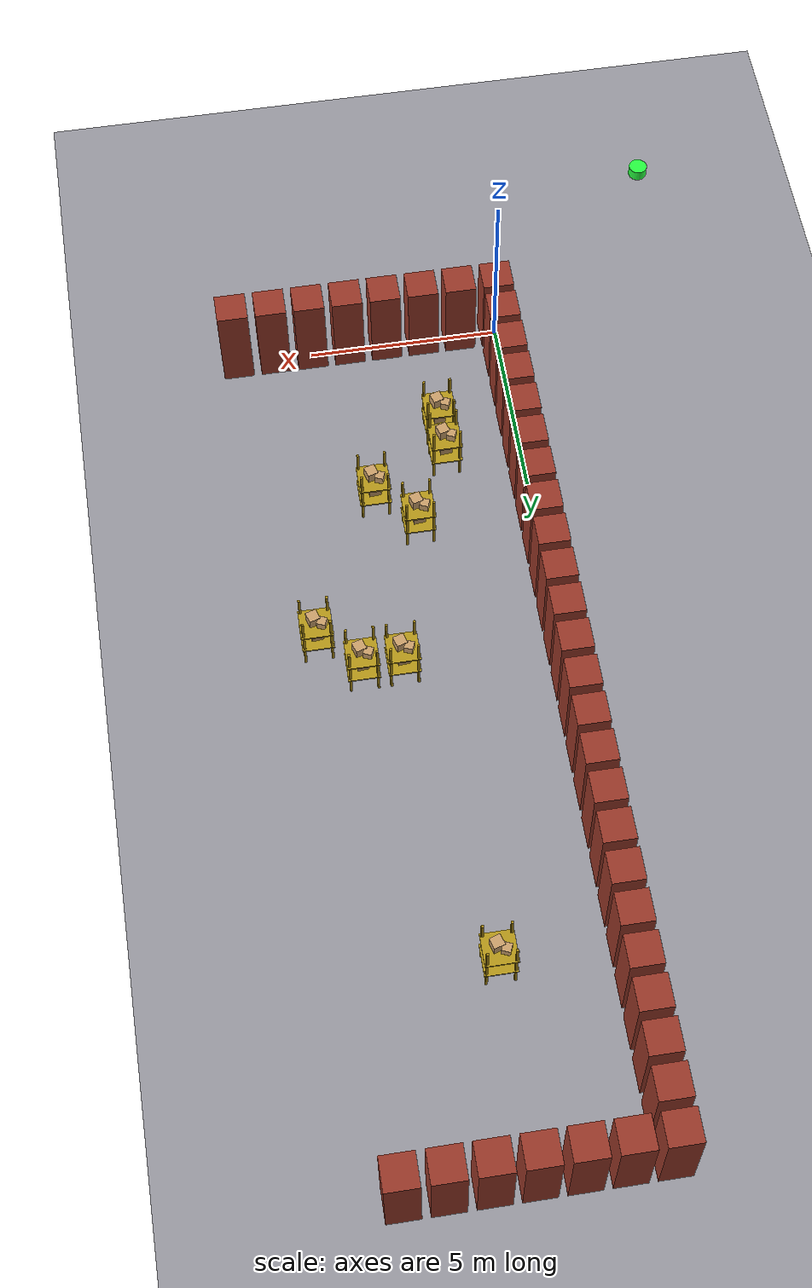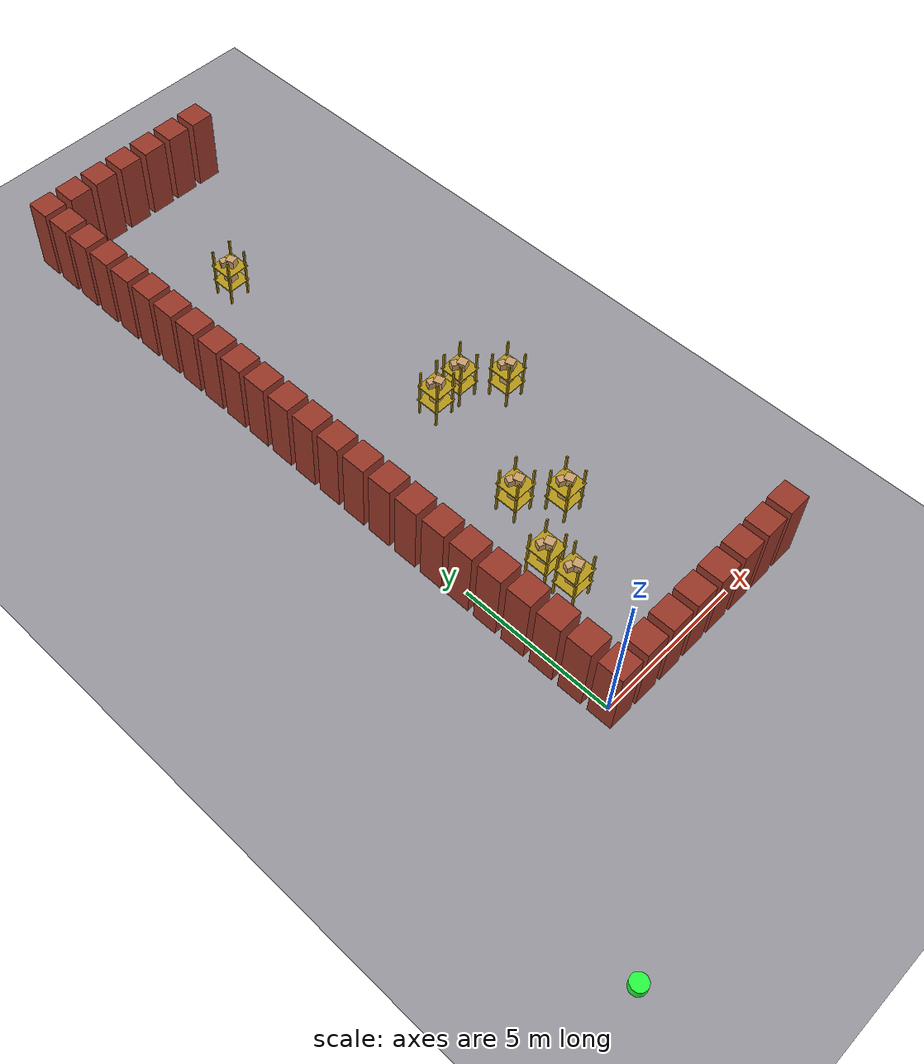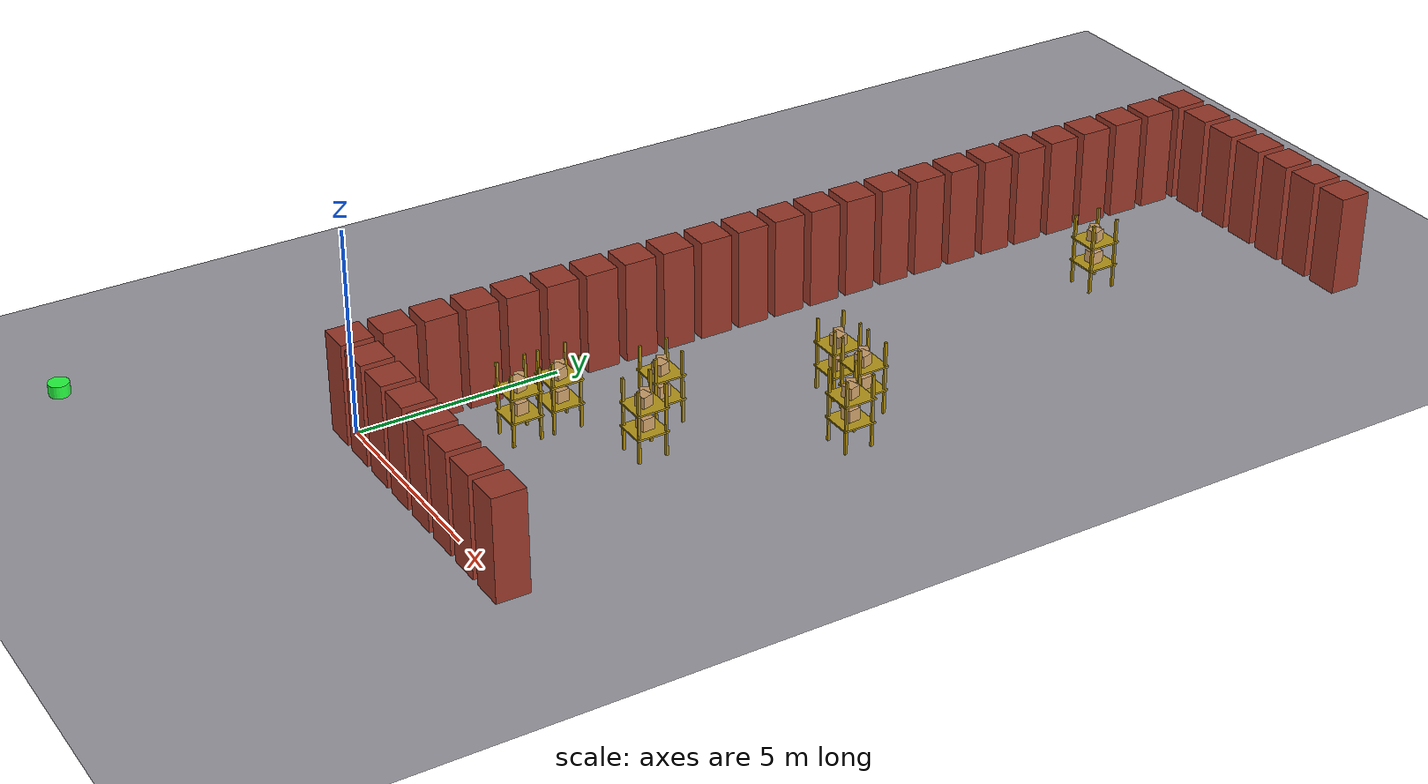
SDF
<sdf version="1.9">
 <world name="agv_nav">
  <model name="goal_marker">
   <static>false</static>
   <pose>-5 -5 0.15 0 0 0</pose>
   <link name="link">
    <gravity>false</gravity>
    <visual name="visual">
     <geometry><cylinder><radius>0.25</radius><length>0.3</length></cylinder></geometry>
     <material>
      <ambient>0.1 0.9 0.2 1</ambient>
      <diffuse>0.15 1.0 0.25 1</diffuse>
      <emissive>0.05 0.5 0.05 1</emissive>
     </material>
    </visual>
   </link>
  </model>
  <model name="ground_plane">
   <static>true</static>
   <link name="link">
    <collision name="collision">
     <geometry><plane><normal>0 0 1</normal><size>100 100</size></plane></geometry>
    </collision>
    <visual name="visual">
     <geometry><plane><normal>0 0 1</normal><size>100 100</size></plane></geometry>
     <material>
      <ambient>0.55 0.55 0.58 1</ambient>
      <diffuse>0.6 0.6 0.63 1</diffuse>
      <specular>0.2 0.2 0.2 1</specular>
     </material>
    </visual>
   </link>
  </model>
  <model name="wall_0">
   <static>true</static>
   <pose>0 0 1.25 0 0 0</pose>
   <link name="link">
    <collision name="collision"><geometry><box><size>0.8 0.8 2.5</size></box></geometry></collision>
    <visual name="visual">
     <geometry><box><size>0.8 0.8 2.5</size></box></geometry>
     <material>
      <ambient>0.5 0.18 0.14 1</ambient>
      <diffuse>0.6 0.22 0.16 1</diffuse>
      <specular>0.1 0.1 0.1 1</specular>
     </material>
    </visual>
   </link>
  </model>
  <model name="wall_1">
   <static>true</static>
   <pose>1 0 1.25 0 0 0</pose>
   <link name="link">
    <collision name="collision"><geometry><box><size>0.8 0.8 2.5</size></box></geometry></collision>
    <visual name="visual">
     <geometry><box><size>0.8 0.8 2.5</size></box></geometry>
     <material>
      <ambient>0.5 0.18 0.14 1</ambient>
      <diffuse>0.6 0.22 0.16 1</diffuse>
      <specular>0.1 0.1 0.1 1</specular>
     </material>
    </visual>
   </link>
  </model>
  <model name="wall_2">
   <static>true</static>
   <pose>2 0 1.25 0 0 0</pose>
   <link name="link">
    <collision name="collision"><geometry><box><size>0.8 0.8 2.5</size></box></geometry></collision>
    <visual name="visual">
     <geometry><box><size>0.8 0.8 2.5</size></box></geometry>
     <material>
      <ambient>0.5 0.18 0.14 1</ambient>
      <diffuse>0.6 0.22 0.16 1</diffuse>
      <specular>0.1 0.1 0.1 1</specular>
     </material>
    </visual>
   </link>
  </model>
  <model name="wall_3">
   <static>true</static>
   <pose>3 0 1.25 0 0 0</pose>
   <link name="link">
    <collision name="collision"><geometry><box><size>0.8 0.8 2.5</size></box></geometry></collision>
    <visual name="visual">
     <geometry><box><size>0.8 0.8 2.5</size></box></geometry>
     <material>
      <ambient>0.5 0.18 0.14 1</ambient>
      <diffuse>0.6 0.22 0.16 1</diffuse>
      <specular>0.1 0.1 0.1 1</specular>
     </material>
    </visual>
   </link>
  </model>
  <model name="wall_4">
   <static>true</static>
   <pose>4 0 1.25 0 0 0</pose>
   <link name="link">
    <collision name="collision"><geometry><box><size>0.8 0.8 2.5</size></box></geometry></collision>
    <visual name="visual">
     <geometry><box><size>0.8 0.8 2.5</size></box></geometry>
     <material>
      <ambient>0.5 0.18 0.14 1</ambient>
      <diffuse>0.6 0.22 0.16 1</diffuse>
      <specular>0.1 0.1 0.1 1</specular>
     </material>
    </visual>
   </link>
  </model>
  <model name="wall_5">
   <static>true</static>
   <pose>5 0 1.25 0 0 0</pose>
   <link name="link">
    <collision name="collision"><geometry><box><size>0.8 0.8 2.5</size></box></geometry></collision>
    <visual name="visual">
     <geometry><box><size>0.8 0.8 2.5</size></box></geometry>
     <material>
      <ambient>0.5 0.18 0.14 1</ambient>
      <diffuse>0.6 0.22 0.16 1</diffuse>
      <specular>0.1 0.1 0.1 1</specular>
     </material>
    </visual>
   </link>
  </model>
  <model name="wall_6">
   <static>true</static>
   <pose>6 0 1.25 0 0 0</pose>
   <link name="link">
    <collision name="collision"><geometry><box><size>0.8 0.8 2.5</size></box></geometry></collision>
    <visual name="visual">
     <geometry><box><size>0.8 0.8 2.5</size></box></geometry>
     <material>
      <ambient>0.5 0.18 0.14 1</ambient>
      <diffuse>0.6 0.22 0.16 1</diffuse>
      <specular>0.1 0.1 0.1 1</specular>
     </material>
    </visual>
   </link>
  </model>
  <model name="wall_7">
   <static>true</static>
   <pose>7 0 1.25 0 0 0</pose>
   <link name="link">
    <collision name="collision"><geometry><box><size>0.8 0.8 2.5</size></box></geometry></collision>
    <visual name="visual">
     <geometry><box><size>0.8 0.8 2.5</size></box></geometry>
     <material>
      <ambient>0.5 0.18 0.14 1</ambient>
      <diffuse>0.6 0.22 0.16 1</diffuse>
      <specular>0.1 0.1 0.1 1</specular>
     </material>
    </visual>
   </link>
  </model>
  <model name="wall_24">
   <static>true</static>
   <pose>0 1 1.25 0 0 0</pose>
   <link name="link">
    <collision name="collision"><geometry><box><size>0.8 0.8 2.5</size></box></geometry></collision>
    <visual name="visual">
     <geometry><box><size>0.8 0.8 2.5</size></box></geometry>
     <material>
      <ambient>0.5 0.18 0.14 1</ambient>
      <diffuse>0.6 0.22 0.16 1</diffuse>
      <specular>0.1 0.1 0.1 1</specular>
     </material>
    </visual>
   </link>
  </model>
  <model name="wall_26">
   <static>true</static>
   <pose>0 2 1.25 0 0 0</pose>
   <link name="link">
    <collision name="collision"><geometry><box><size>0.8 0.8 2.5</size></box></geometry></collision>
    <visual name="visual">
     <geometry><box><size>0.8 0.8 2.5</size></box></geometry>
     <material>
      <ambient>0.5 0.18 0.14 1</ambient>
      <diffuse>0.6 0.22 0.16 1</diffuse>
      <specular>0.1 0.1 0.1 1</specular>
     </material>
    </visual>
   </link>
  </model>
  <model name="wall_28">
   <static>true</static>
   <pose>0 3 1.25 0 0 0</pose>
   <link name="link">
    <collision name="collision"><geometry><box><size>0.8 0.8 2.5</size></box></geometry></collision>
    <visual name="visual">
     <geometry><box><size>0.8 0.8 2.5</size></box></geometry>
     <material>
      <ambient>0.5 0.18 0.14 1</ambient>
      <diffuse>0.6 0.22 0.16 1</diffuse>
      <specular>0.1 0.1 0.1 1</specular>
     </material>
    </visual>
   </link>
  </model>
  <model name="obs_0">
   <static>true</static>
   <pose>2 3 0.9 0 0 0</pose>
   <link name="link">
    <collision name="collision"><geometry><box><size>0.8 0.8 1.8</size></box></geometry></collision>
    <visual name="post_0">
     <pose>0.34 0.34 0 0 0 0</pose>
     <geometry><box><size>0.06 0.06 1.8</size></box></geometry>
     <material><ambient>0.55 0.45 0.05 1</ambient><diffuse>0.65 0.52 0.06 1</diffuse></material>
    </visual>
    <visual name="post_1">
     <pose>-0.34 0.34 0 0 0 0</pose>
     <geometry><box><size>0.06 0.06 1.8</size></box></geometry>
     <material><ambient>0.55 0.45 0.05 1</ambient><diffuse>0.65 0.52 0.06 1</diffuse></material>
    </visual>
    <visual name="post_2">
     <pose>0.34 -0.34 0 0 0 0</pose>
     <geometry><box><size>0.06 0.06 1.8</size></box></geometry>
     <material><ambient>0.55 0.45 0.05 1</ambient><diffuse>0.65 0.52 0.06 1</diffuse></material>
    </visual>
    <visual name="post_3">
     <pose>-0.34 -0.34 0 0 0 0</pose>
     <geometry><box><size>0.06 0.06 1.8</size></box></geometry>
     <material><ambient>0.55 0.45 0.05 1</ambient><diffuse>0.65 0.52 0.06 1</diffuse></material>
    </visual>
    <visual name="plank_0">
     <pose>0 0 -0.3 0 0 0</pose>
     <geometry><box><size>0.8 0.8 0.04</size></box></geometry>
     <material><ambient>0.6 0.5 0.08 1</ambient><diffuse>0.72 0.6 0.1 1</diffuse></material>
    </visual>
    <visual name="plank_1">
     <pose>0 0 0.3 0 0 0</pose>
     <geometry><box><size>0.8 0.8 0.04</size></box></geometry>
     <material><ambient>0.6 0.5 0.08 1</ambient><diffuse>0.72 0.6 0.1 1</diffuse></material>
    </visual>
    <visual name="cbox_0">
     <pose>0.05 -0.05 0.47 0 0 0.3</pose>
     <geometry><box><size>0.28 0.28 0.28</size></box></geometry>
     <material><ambient>0.72 0.56 0.38 1</ambient><diffuse>0.8 0.63 0.42 1</diffuse></material>
    </visual>
    <visual name="cbox_1">
     <pose>-0.15 0.1 0.47 0 0 -0.4</pose>
     <geometry><box><size>0.22 0.22 0.22</size></box></geometry>
     <material><ambient>0.72 0.56 0.38 1</ambient><diffuse>0.8 0.63 0.42 1</diffuse></material>
    </visual>
    <visual name="cbox_2">
     <pose>0.0 0.0 -0.13 0 0 0.1</pose>
     <geometry><box><size>0.3 0.3 0.3</size></box></geometry>
     <material><ambient>0.72 0.56 0.38 1</ambient><diffuse>0.8 0.63 0.42 1</diffuse></material>
    </visual>
   </link>
  </model>
  <model name="wall_30">
   <static>true</static>
   <pose>0 4 1.25 0 0 0</pose>
   <link name="link">
    <collision name="collision"><geometry><box><size>0.8 0.8 2.5</size></box></geometry></collision>
    <visual name="visual">
     <geometry><box><size>0.8 0.8 2.5</size></box></geometry>
     <material>
      <ambient>0.5 0.18 0.14 1</ambient>
      <diffuse>0.6 0.22 0.16 1</diffuse>
      <specular>0.1 0.1 0.1 1</specular>
     </material>
    </visual>
   </link>
  </model>
  <model name="obs_4">
   <static>true</static>
   <pose>2 4 0.9 0 0 0</pose>
   <link name="link">
    <collision name="collision"><geometry><box><size>0.8 0.8 1.8</size></box></geometry></collision>
    <visual name="post_0">
     <pose>0.34 0.34 0 0 0 0</pose>
     <geometry><box><size>0.06 0.06 1.8</size></box></geometry>
     <material><ambient>0.55 0.45 0.05 1</ambient><diffuse>0.65 0.52 0.06 1</diffuse></material>
    </visual>
    <visual name="post_1">
     <pose>-0.34 0.34 0 0 0 0</pose>
     <geometry><box><size>0.06 0.06 1.8</size></box></geometry>
     <material><ambient>0.55 0.45 0.05 1</ambient><diffuse>0.65 0.52 0.06 1</diffuse></material>
    </visual>
    <visual name="post_2">
     <pose>0.34 -0.34 0 0 0 0</pose>
     <geometry><box><size>0.06 0.06 1.8</size></box></geometry>
     <material><ambient>0.55 0.45 0.05 1</ambient><diffuse>0.65 0.52 0.06 1</diffuse></material>
    </visual>
    <visual name="post_3">
     <pose>-0.34 -0.34 0 0 0 0</pose>
     <geometry><box><size>0.06 0.06 1.8</size></box></geometry>
     <material><ambient>0.55 0.45 0.05 1</ambient><diffuse>0.65 0.52 0.06 1</diffuse></material>
    </visual>
    <visual name="plank_0">
     <pose>0 0 -0.3 0 0 0</pose>
     <geometry><box><size>0.8 0.8 0.04</size></box></geometry>
     <material><ambient>0.6 0.5 0.08 1</ambient><diffuse>0.72 0.6 0.1 1</diffuse></material>
    </visual>
    <visual name="plank_1">
     <pose>0 0 0.3 0 0 0</pose>
     <geometry><box><size>0.8 0.8 0.04</size></box></geometry>
     <material><ambient>0.6 0.5 0.08 1</ambient><diffuse>0.72 0.6 0.1 1</diffuse></material>
    </visual>
    <visual name="cbox_0">
     <pose>0.05 -0.05 0.47 0 0 0.3</pose>
     <geometry><box><size>0.28 0.28 0.28</size></box></geometry>
     <material><ambient>0.72 0.56 0.38 1</ambient><diffuse>0.8 0.63 0.42 1</diffuse></material>
    </visual>
    <visual name="cbox_1">
     <pose>-0.15 0.1 0.47 0 0 -0.4</pose>
     <geometry><box><size>0.22 0.22 0.22</size></box></geometry>
     <material><ambient>0.72 0.56 0.38 1</ambient><diffuse>0.8 0.63 0.42 1</diffuse></material>
    </visual>
    <visual name="cbox_2">
     <pose>0.0 0.0 -0.13 0 0 0.1</pose>
     <geometry><box><size>0.3 0.3 0.3</size></box></geometry>
     <material><ambient>0.72 0.56 0.38 1</ambient><diffuse>0.8 0.63 0.42 1</diffuse></material>
    </visual>
   </link>
  </model>
  <model name="wall_32">
   <static>true</static>
   <pose>0 5 1.25 0 0 0</pose>
   <link name="link">
    <collision name="collision"><geometry><box><size>0.8 0.8 2.5</size></box></geometry></collision>
    <visual name="visual">
     <geometry><box><size>0.8 0.8 2.5</size></box></geometry>
     <material>
      <ambient>0.5 0.18 0.14 1</ambient>
      <diffuse>0.6 0.22 0.16 1</diffuse>
      <specular>0.1 0.1 0.1 1</specular>
     </material>
    </visual>
   </link>
  </model>
  <model name="obs_6">
   <static>true</static>
   <pose>4 5 0.9 0 0 0</pose>
   <link name="link">
    <collision name="collision"><geometry><box><size>0.8 0.8 1.8</size></box></geometry></collision>
    <visual name="post_0">
     <pose>0.34 0.34 0 0 0 0</pose>
     <geometry><box><size>0.06 0.06 1.8</size></box></geometry>
     <material><ambient>0.55 0.45 0.05 1</ambient><diffuse>0.65 0.52 0.06 1</diffuse></material>
    </visual>
    <visual name="post_1">
     <pose>-0.34 0.34 0 0 0 0</pose>
     <geometry><box><size>0.06 0.06 1.8</size></box></geometry>
     <material><ambient>0.55 0.45 0.05 1</ambient><diffuse>0.65 0.52 0.06 1</diffuse></material>
    </visual>
    <visual name="post_2">
     <pose>0.34 -0.34 0 0 0 0</pose>
     <geometry><box><size>0.06 0.06 1.8</size></box></geometry>
     <material><ambient>0.55 0.45 0.05 1</ambient><diffuse>0.65 0.52 0.06 1</diffuse></material>
    </visual>
    <visual name="post_3">
     <pose>-0.34 -0.34 0 0 0 0</pose>
     <geometry><box><size>0.06 0.06 1.8</size></box></geometry>
     <material><ambient>0.55 0.45 0.05 1</ambient><diffuse>0.65 0.52 0.06 1</diffuse></material>
    </visual>
    <visual name="plank_0">
     <pose>0 0 -0.3 0 0 0</pose>
     <geometry><box><size>0.8 0.8 0.04</size></box></geometry>
     <material><ambient>0.6 0.5 0.08 1</ambient><diffuse>0.72 0.6 0.1 1</diffuse></material>
    </visual>
    <visual name="plank_1">
     <pose>0 0 0.3 0 0 0</pose>
     <geometry><box><size>0.8 0.8 0.04</size></box></geometry>
     <material><ambient>0.6 0.5 0.08 1</ambient><diffuse>0.72 0.6 0.1 1</diffuse></material>
    </visual>
    <visual name="cbox_0">
     <pose>0.05 -0.05 0.47 0 0 0.3</pose>
     <geometry><box><size>0.28 0.28 0.28</size></box></geometry>
     <material><ambient>0.72 0.56 0.38 1</ambient><diffuse>0.8 0.63 0.42 1</diffuse></material>
    </visual>
    <visual name="cbox_1">
     <pose>-0.15 0.1 0.47 0 0 -0.4</pose>
     <geometry><box><size>0.22 0.22 0.22</size></box></geometry>
     <material><ambient>0.72 0.56 0.38 1</ambient><diffuse>0.8 0.63 0.42 1</diffuse></material>
    </visual>
    <visual name="cbox_2">
     <pose>0.0 0.0 -0.13 0 0 0.1</pose>
     <geometry><box><size>0.3 0.3 0.3</size></box></geometry>
     <material><ambient>0.72 0.56 0.38 1</ambient><diffuse>0.8 0.63 0.42 1</diffuse></material>
    </visual>
   </link>
  </model>
  <model name="wall_34">
   <static>true</static>
   <pose>0 6 1.25 0 0 0</pose>
   <link name="link">
    <collision name="collision"><geometry><box><size>0.8 0.8 2.5</size></box></geometry></collision>
    <visual name="visual">
     <geometry><box><size>0.8 0.8 2.5</size></box></geometry>
     <material>
      <ambient>0.5 0.18 0.14 1</ambient>
      <diffuse>0.6 0.22 0.16 1</diffuse>
      <specular>0.1 0.1 0.1 1</specular>
     </material>
    </visual>
   </link>
  </model>
  <model name="obs_8">
   <static>true</static>
   <pose>3 6 0.9 0 0 0</pose>
   <link name="link">
    <collision name="collision"><geometry><box><size>0.8 0.8 1.8</size></box></geometry></collision>
    <visual name="post_0">
     <pose>0.34 0.34 0 0 0 0</pose>
     <geometry><box><size>0.06 0.06 1.8</size></box></geometry>
     <material><ambient>0.55 0.45 0.05 1</ambient><diffuse>0.65 0.52 0.06 1</diffuse></material>
    </visual>
    <visual name="post_1">
     <pose>-0.34 0.34 0 0 0 0</pose>
     <geometry><box><size>0.06 0.06 1.8</size></box></geometry>
     <material><ambient>0.55 0.45 0.05 1</ambient><diffuse>0.65 0.52 0.06 1</diffuse></material>
    </visual>
    <visual name="post_2">
     <pose>0.34 -0.34 0 0 0 0</pose>
     <geometry><box><size>0.06 0.06 1.8</size></box></geometry>
     <material><ambient>0.55 0.45 0.05 1</ambient><diffuse>0.65 0.52 0.06 1</diffuse></material>
    </visual>
    <visual name="post_3">
     <pose>-0.34 -0.34 0 0 0 0</pose>
     <geometry><box><size>0.06 0.06 1.8</size></box></geometry>
     <material><ambient>0.55 0.45 0.05 1</ambient><diffuse>0.65 0.52 0.06 1</diffuse></material>
    </visual>
    <visual name="plank_0">
     <pose>0 0 -0.3 0 0 0</pose>
     <geometry><box><size>0.8 0.8 0.04</size></box></geometry>
     <material><ambient>0.6 0.5 0.08 1</ambient><diffuse>0.72 0.6 0.1 1</diffuse></material>
    </visual>
    <visual name="plank_1">
     <pose>0 0 0.3 0 0 0</pose>
     <geometry><box><size>0.8 0.8 0.04</size></box></geometry>
     <material><ambient>0.6 0.5 0.08 1</ambient><diffuse>0.72 0.6 0.1 1</diffuse></material>
    </visual>
    <visual name="cbox_0">
     <pose>0.05 -0.05 0.47 0 0 0.3</pose>
     <geometry><box><size>0.28 0.28 0.28</size></box></geometry>
     <material><ambient>0.72 0.56 0.38 1</ambient><diffuse>0.8 0.63 0.42 1</diffuse></material>
    </visual>
    <visual name="cbox_1">
     <pose>-0.15 0.1 0.47 0 0 -0.4</pose>
     <geometry><box><size>0.22 0.22 0.22</size></box></geometry>
     <material><ambient>0.72 0.56 0.38 1</ambient><diffuse>0.8 0.63 0.42 1</diffuse></material>
    </visual>
    <visual name="cbox_2">
     <pose>0.0 0.0 -0.13 0 0 0.1</pose>
     <geometry><box><size>0.3 0.3 0.3</size></box></geometry>
     <material><ambient>0.72 0.56 0.38 1</ambient><diffuse>0.8 0.63 0.42 1</diffuse></material>
    </visual>
   </link>
  </model>
  <model name="wall_36">
   <static>true</static>
   <pose>0 7 1.25 0 0 0</pose>
   <link name="link">
    <collision name="collision"><geometry><box><size>0.8 0.8 2.5</size></box></geometry></collision>
    <visual name="visual">
     <geometry><box><size>0.8 0.8 2.5</size></box></geometry>
     <material>
      <ambient>0.5 0.18 0.14 1</ambient>
      <diffuse>0.6 0.22 0.16 1</diffuse>
      <specular>0.1 0.1 0.1 1</specular>
     </material>
    </visual>
   </link>
  </model>
  <model name="wall_38">
   <static>true</static>
   <pose>0 8 1.25 0 0 0</pose>
   <link name="link">
    <collision name="collision"><geometry><box><size>0.8 0.8 2.5</size></box></geometry></collision>
    <visual name="visual">
     <geometry><box><size>0.8 0.8 2.5</size></box></geometry>
     <material>
      <ambient>0.5 0.18 0.14 1</ambient>
      <diffuse>0.6 0.22 0.16 1</diffuse>
      <specular>0.1 0.1 0.1 1</specular>
     </material>
    </visual>
   </link>
  </model>
  <model name="wall_40">
   <static>true</static>
   <pose>0 9 1.25 0 0 0</pose>
   <link name="link">
    <collision name="collision"><geometry><box><size>0.8 0.8 2.5</size></box></geometry></collision>
    <visual name="visual">
     <geometry><box><size>0.8 0.8 2.5</size></box></geometry>
     <material>
      <ambient>0.5 0.18 0.14 1</ambient>
      <diffuse>0.6 0.22 0.16 1</diffuse>
      <specular>0.1 0.1 0.1 1</specular>
     </material>
    </visual>
   </link>
  </model>
  <model name="obs_10">
   <static>true</static>
   <pose>6 9 0.9 0 0 0</pose>
   <link name="link">
    <collision name="collision"><geometry><box><size>0.8 0.8 1.8</size></box></geometry></collision>
    <visual name="post_0">
     <pose>0.34 0.34 0 0 0 0</pose>
     <geometry><box><size>0.06 0.06 1.8</size></box></geometry>
     <material><ambient>0.55 0.45 0.05 1</ambient><diffuse>0.65 0.52 0.06 1</diffuse></material>
    </visual>
    <visual name="post_1">
     <pose>-0.34 0.34 0 0 0 0</pose>
     <geometry><box><size>0.06 0.06 1.8</size></box></geometry>
     <material><ambient>0.55 0.45 0.05 1</ambient><diffuse>0.65 0.52 0.06 1</diffuse></material>
    </visual>
    <visual name="post_2">
     <pose>0.34 -0.34 0 0 0 0</pose>
     <geometry><box><size>0.06 0.06 1.8</size></box></geometry>
     <material><ambient>0.55 0.45 0.05 1</ambient><diffuse>0.65 0.52 0.06 1</diffuse></material>
    </visual>
    <visual name="post_3">
     <pose>-0.34 -0.34 0 0 0 0</pose>
     <geometry><box><size>0.06 0.06 1.8</size></box></geometry>
     <material><ambient>0.55 0.45 0.05 1</ambient><diffuse>0.65 0.52 0.06 1</diffuse></material>
    </visual>
    <visual name="plank_0">
     <pose>0 0 -0.3 0 0 0</pose>
     <geometry><box><size>0.8 0.8 0.04</size></box></geometry>
     <material><ambient>0.6 0.5 0.08 1</ambient><diffuse>0.72 0.6 0.1 1</diffuse></material>
    </visual>
    <visual name="plank_1">
     <pose>0 0 0.3 0 0 0</pose>
     <geometry><box><size>0.8 0.8 0.04</size></box></geometry>
     <material><ambient>0.6 0.5 0.08 1</ambient><diffuse>0.72 0.6 0.1 1</diffuse></material>
    </visual>
    <visual name="cbox_0">
     <pose>0.05 -0.05 0.47 0 0 0.3</pose>
     <geometry><box><size>0.28 0.28 0.28</size></box></geometry>
     <material><ambient>0.72 0.56 0.38 1</ambient><diffuse>0.8 0.63 0.42 1</diffuse></material>
    </visual>
    <visual name="cbox_1">
     <pose>-0.15 0.1 0.47 0 0 -0.4</pose>
     <geometry><box><size>0.22 0.22 0.22</size></box></geometry>
     <material><ambient>0.72 0.56 0.38 1</ambient><diffuse>0.8 0.63 0.42 1</diffuse></material>
    </visual>
    <visual name="cbox_2">
     <pose>0.0 0.0 -0.13 0 0 0.1</pose>
     <geometry><box><size>0.3 0.3 0.3</size></box></geometry>
     <material><ambient>0.72 0.56 0.38 1</ambient><diffuse>0.8 0.63 0.42 1</diffuse></material>
    </visual>
   </link>
  </model>
  <model name="wall_42">
   <static>true</static>
   <pose>0 10 1.25 0 0 0</pose>
   <link name="link">
    <collision name="collision"><geometry><box><size>0.8 0.8 2.5</size></box></geometry></collision>
    <visual name="visual">
     <geometry><box><size>0.8 0.8 2.5</size></box></geometry>
     <material>
      <ambient>0.5 0.18 0.14 1</ambient>
      <diffuse>0.6 0.22 0.16 1</diffuse>
      <specular>0.1 0.1 0.1 1</specular>
     </material>
    </visual>
   </link>
  </model>
  <model name="obs_12">
   <static>true</static>
   <pose>4 10 0.9 0 0 0</pose>
   <link name="link">
    <collision name="collision"><geometry><box><size>0.8 0.8 1.8</size></box></geometry></collision>
    <visual name="post_0">
     <pose>0.34 0.34 0 0 0 0</pose>
     <geometry><box><size>0.06 0.06 1.8</size></box></geometry>
     <material><ambient>0.55 0.45 0.05 1</ambient><diffuse>0.65 0.52 0.06 1</diffuse></material>
    </visual>
    <visual name="post_1">
     <pose>-0.34 0.34 0 0 0 0</pose>
     <geometry><box><size>0.06 0.06 1.8</size></box></geometry>
     <material><ambient>0.55 0.45 0.05 1</ambient><diffuse>0.65 0.52 0.06 1</diffuse></material>
    </visual>
    <visual name="post_2">
     <pose>0.34 -0.34 0 0 0 0</pose>
     <geometry><box><size>0.06 0.06 1.8</size></box></geometry>
     <material><ambient>0.55 0.45 0.05 1</ambient><diffuse>0.65 0.52 0.06 1</diffuse></material>
    </visual>
    <visual name="post_3">
     <pose>-0.34 -0.34 0 0 0 0</pose>
     <geometry><box><size>0.06 0.06 1.8</size></box></geometry>
     <material><ambient>0.55 0.45 0.05 1</ambient><diffuse>0.65 0.52 0.06 1</diffuse></material>
    </visual>
    <visual name="plank_0">
     <pose>0 0 -0.3 0 0 0</pose>
     <geometry><box><size>0.8 0.8 0.04</size></box></geometry>
     <material><ambient>0.6 0.5 0.08 1</ambient><diffuse>0.72 0.6 0.1 1</diffuse></material>
    </visual>
    <visual name="plank_1">
     <pose>0 0 0.3 0 0 0</pose>
     <geometry><box><size>0.8 0.8 0.04</size></box></geometry>
     <material><ambient>0.6 0.5 0.08 1</ambient><diffuse>0.72 0.6 0.1 1</diffuse></material>
    </visual>
    <visual name="cbox_0">
     <pose>0.05 -0.05 0.47 0 0 0.3</pose>
     <geometry><box><size>0.28 0.28 0.28</size></box></geometry>
     <material><ambient>0.72 0.56 0.38 1</ambient><diffuse>0.8 0.63 0.42 1</diffuse></material>
    </visual>
    <visual name="cbox_1">
     <pose>-0.15 0.1 0.47 0 0 -0.4</pose>
     <geometry><box><size>0.22 0.22 0.22</size></box></geometry>
     <material><ambient>0.72 0.56 0.38 1</ambient><diffuse>0.8 0.63 0.42 1</diffuse></material>
    </visual>
    <visual name="cbox_2">
     <pose>0.0 0.0 -0.13 0 0 0.1</pose>
     <geometry><box><size>0.3 0.3 0.3</size></box></geometry>
     <material><ambient>0.72 0.56 0.38 1</ambient><diffuse>0.8 0.63 0.42 1</diffuse></material>
    </visual>
   </link>
  </model>
  <model name="obs_13">
   <static>true</static>
   <pose>5 10 0.9 0 0 0</pose>
   <link name="link">
    <collision name="collision"><geometry><box><size>0.8 0.8 1.8</size></box></geometry></collision>
    <visual name="post_0">
     <pose>0.34 0.34 0 0 0 0</pose>
     <geometry><box><size>0.06 0.06 1.8</size></box></geometry>
     <material><ambient>0.55 0.45 0.05 1</ambient><diffuse>0.65 0.52 0.06 1</diffuse></material>
    </visual>
    <visual name="post_1">
     <pose>-0.34 0.34 0 0 0 0</pose>
     <geometry><box><size>0.06 0.06 1.8</size></box></geometry>
     <material><ambient>0.55 0.45 0.05 1</ambient><diffuse>0.65 0.52 0.06 1</diffuse></material>
    </visual>
    <visual name="post_2">
     <pose>0.34 -0.34 0 0 0 0</pose>
     <geometry><box><size>0.06 0.06 1.8</size></box></geometry>
     <material><ambient>0.55 0.45 0.05 1</ambient><diffuse>0.65 0.52 0.06 1</diffuse></material>
    </visual>
    <visual name="post_3">
     <pose>-0.34 -0.34 0 0 0 0</pose>
     <geometry><box><size>0.06 0.06 1.8</size></box></geometry>
     <material><ambient>0.55 0.45 0.05 1</ambient><diffuse>0.65 0.52 0.06 1</diffuse></material>
    </visual>
    <visual name="plank_0">
     <pose>0 0 -0.3 0 0 0</pose>
     <geometry><box><size>0.8 0.8 0.04</size></box></geometry>
     <material><ambient>0.6 0.5 0.08 1</ambient><diffuse>0.72 0.6 0.1 1</diffuse></material>
    </visual>
    <visual name="plank_1">
     <pose>0 0 0.3 0 0 0</pose>
     <geometry><box><size>0.8 0.8 0.04</size></box></geometry>
     <material><ambient>0.6 0.5 0.08 1</ambient><diffuse>0.72 0.6 0.1 1</diffuse></material>
    </visual>
    <visual name="cbox_0">
     <pose>0.05 -0.05 0.47 0 0 0.3</pose>
     <geometry><box><size>0.28 0.28 0.28</size></box></geometry>
     <material><ambient>0.72 0.56 0.38 1</ambient><diffuse>0.8 0.63 0.42 1</diffuse></material>
    </visual>
    <visual name="cbox_1">
     <pose>-0.15 0.1 0.47 0 0 -0.4</pose>
     <geometry><box><size>0.22 0.22 0.22</size></box></geometry>
     <material><ambient>0.72 0.56 0.38 1</ambient><diffuse>0.8 0.63 0.42 1</diffuse></material>
    </visual>
    <visual name="cbox_2">
     <pose>0.0 0.0 -0.13 0 0 0.1</pose>
     <geometry><box><size>0.3 0.3 0.3</size></box></geometry>
     <material><ambient>0.72 0.56 0.38 1</ambient><diffuse>0.8 0.63 0.42 1</diffuse></material>
    </visual>
   </link>
  </model>
  <model name="wall_44">
   <static>true</static>
   <pose>0 11 1.25 0 0 0</pose>
   <link name="link">
    <collision name="collision"><geometry><box><size>0.8 0.8 2.5</size></box></geometry></collision>
    <visual name="visual">
     <geometry><box><size>0.8 0.8 2.5</size></box></geometry>
     <material>
      <ambient>0.5 0.18 0.14 1</ambient>
      <diffuse>0.6 0.22 0.16 1</diffuse>
      <specular>0.1 0.1 0.1 1</specular>
     </material>
    </visual>
   </link>
  </model>
  <model name="wall_46">
   <static>true</static>
   <pose>0 12 1.25 0 0 0</pose>
   <link name="link">
    <collision name="collision"><geometry><box><size>0.8 0.8 2.5</size></box></geometry></collision>
    <visual name="visual">
     <geometry><box><size>0.8 0.8 2.5</size></box></geometry>
     <material>
      <ambient>0.5 0.18 0.14 1</ambient>
      <diffuse>0.6 0.22 0.16 1</diffuse>
      <specular>0.1 0.1 0.1 1</specular>
     </material>
    </visual>
   </link>
  </model>
  <model name="wall_48">
   <static>true</static>
   <pose>0 13 1.25 0 0 0</pose>
   <link name="link">
    <collision name="collision"><geometry><box><size>0.8 0.8 2.5</size></box></geometry></collision>
    <visual name="visual">
     <geometry><box><size>0.8 0.8 2.5</size></box></geometry>
     <material>
      <ambient>0.5 0.18 0.14 1</ambient>
      <diffuse>0.6 0.22 0.16 1</diffuse>
      <specular>0.1 0.1 0.1 1</specular>
     </material>
    </visual>
   </link>
  </model>
  <model name="wall_50">
   <static>true</static>
   <pose>0 14 1.25 0 0 0</pose>
   <link name="link">
    <collision name="collision"><geometry><box><size>0.8 0.8 2.5</size></box></geometry></collision>
    <visual name="visual">
     <geometry><box><size>0.8 0.8 2.5</size></box></geometry>
     <material>
      <ambient>0.5 0.18 0.14 1</ambient>
      <diffuse>0.6 0.22 0.16 1</diffuse>
      <specular>0.1 0.1 0.1 1</specular>
     </material>
    </visual>
   </link>
  </model>
  <model name="wall_52">
   <static>true</static>
   <pose>0 15 1.25 0 0 0</pose>
   <link name="link">
    <collision name="collision"><geometry><box><size>0.8 0.8 2.5</size></box></geometry></collision>
    <visual name="visual">
     <geometry><box><size>0.8 0.8 2.5</size></box></geometry>
     <material>
      <ambient>0.5 0.18 0.14 1</ambient>
      <diffuse>0.6 0.22 0.16 1</diffuse>
      <specular>0.1 0.1 0.1 1</specular>
     </material>
    </visual>
   </link>
  </model>
  <model name="wall_54">
   <static>true</static>
   <pose>0 16 1.25 0 0 0</pose>
   <link name="link">
    <collision name="collision"><geometry><box><size>0.8 0.8 2.5</size></box></geometry></collision>
    <visual name="visual">
     <geometry><box><size>0.8 0.8 2.5</size></box></geometry>
     <material>
      <ambient>0.5 0.18 0.14 1</ambient>
      <diffuse>0.6 0.22 0.16 1</diffuse>
      <specular>0.1 0.1 0.1 1</specular>
     </material>
    </visual>
   </link>
  </model>
  <model name="wall_56">
   <static>true</static>
   <pose>0 17 1.25 0 0 0</pose>
   <link name="link">
    <collision name="collision"><geometry><box><size>0.8 0.8 2.5</size></box></geometry></collision>
    <visual name="visual">
     <geometry><box><size>0.8 0.8 2.5</size></box></geometry>
     <material>
      <ambient>0.5 0.18 0.14 1</ambient>
      <diffuse>0.6 0.22 0.16 1</diffuse>
      <specular>0.1 0.1 0.1 1</specular>
     </material>
    </visual>
   </link>
  </model>
  <model name="wall_58">
   <static>true</static>
   <pose>0 18 1.25 0 0 0</pose>
   <link name="link">
    <collision name="collision"><geometry><box><size>0.8 0.8 2.5</size></box></geometry></collision>
    <visual name="visual">
     <geometry><box><size>0.8 0.8 2.5</size></box></geometry>
     <material>
      <ambient>0.5 0.18 0.14 1</ambient>
      <diffuse>0.6 0.22 0.16 1</diffuse>
      <specular>0.1 0.1 0.1 1</specular>
     </material>
    </visual>
   </link>
  </model>
  <model name="obs_26">
   <static>true</static>
   <pose>3 18 0.9 0 0 0</pose>
   <link name="link">
    <collision name="collision"><geometry><box><size>0.8 0.8 1.8</size></box></geometry></collision>
    <visual name="post_0">
     <pose>0.34 0.34 0 0 0 0</pose>
     <geometry><box><size>0.06 0.06 1.8</size></box></geometry>
     <material><ambient>0.55 0.45 0.05 1</ambient><diffuse>0.65 0.52 0.06 1</diffuse></material>
    </visual>
    <visual name="post_1">
     <pose>-0.34 0.34 0 0 0 0</pose>
     <geometry><box><size>0.06 0.06 1.8</size></box></geometry>
     <material><ambient>0.55 0.45 0.05 1</ambient><diffuse>0.65 0.52 0.06 1</diffuse></material>
    </visual>
    <visual name="post_2">
     <pose>0.34 -0.34 0 0 0 0</pose>
     <geometry><box><size>0.06 0.06 1.8</size></box></geometry>
     <material><ambient>0.55 0.45 0.05 1</ambient><diffuse>0.65 0.52 0.06 1</diffuse></material>
    </visual>
    <visual name="post_3">
     <pose>-0.34 -0.34 0 0 0 0</pose>
     <geometry><box><size>0.06 0.06 1.8</size></box></geometry>
     <material><ambient>0.55 0.45 0.05 1</ambient><diffuse>0.65 0.52 0.06 1</diffuse></material>
    </visual>
    <visual name="plank_0">
     <pose>0 0 -0.3 0 0 0</pose>
     <geometry><box><size>0.8 0.8 0.04</size></box></geometry>
     <material><ambient>0.6 0.5 0.08 1</ambient><diffuse>0.72 0.6 0.1 1</diffuse></material>
    </visual>
    <visual name="plank_1">
     <pose>0 0 0.3 0 0 0</pose>
     <geometry><box><size>0.8 0.8 0.04</size></box></geometry>
     <material><ambient>0.6 0.5 0.08 1</ambient><diffuse>0.72 0.6 0.1 1</diffuse></material>
    </visual>
    <visual name="cbox_0">
     <pose>0.05 -0.05 0.47 0 0 0.3</pose>
     <geometry><box><size>0.28 0.28 0.28</size></box></geometry>
     <material><ambient>0.72 0.56 0.38 1</ambient><diffuse>0.8 0.63 0.42 1</diffuse></material>
    </visual>
    <visual name="cbox_1">
     <pose>-0.15 0.1 0.47 0 0 -0.4</pose>
     <geometry><box><size>0.22 0.22 0.22</size></box></geometry>
     <material><ambient>0.72 0.56 0.38 1</ambient><diffuse>0.8 0.63 0.42 1</diffuse></material>
    </visual>
    <visual name="cbox_2">
     <pose>0.0 0.0 -0.13 0 0 0.1</pose>
     <geometry><box><size>0.3 0.3 0.3</size></box></geometry>
     <material><ambient>0.72 0.56 0.38 1</ambient><diffuse>0.8 0.63 0.42 1</diffuse></material>
    </visual>
   </link>
  </model>
  <model name="wall_60">
   <static>true</static>
   <pose>0 19 1.25 0 0 0</pose>
   <link name="link">
    <collision name="collision"><geometry><box><size>0.8 0.8 2.5</size></box></geometry></collision>
    <visual name="visual">
     <geometry><box><size>0.8 0.8 2.5</size></box></geometry>
     <material>
      <ambient>0.5 0.18 0.14 1</ambient>
      <diffuse>0.6 0.22 0.16 1</diffuse>
      <specular>0.1 0.1 0.1 1</specular>
     </material>
    </visual>
   </link>
  </model>
  <model name="wall_62">
   <static>true</static>
   <pose>0 20 1.25 0 0 0</pose>
   <link name="link">
    <collision name="collision"><geometry><box><size>0.8 0.8 2.5</size></box></geometry></collision>
    <visual name="visual">
     <geometry><box><size>0.8 0.8 2.5</size></box></geometry>
     <material>
      <ambient>0.5 0.18 0.14 1</ambient>
      <diffuse>0.6 0.22 0.16 1</diffuse>
      <specular>0.1 0.1 0.1 1</specular>
     </material>
    </visual>
   </link>
  </model>
  <model name="wall_64">
   <static>true</static>
   <pose>0 21 1.25 0 0 0</pose>
   <link name="link">
    <collision name="collision"><geometry><box><size>0.8 0.8 2.5</size></box></geometry></collision>
    <visual name="visual">
     <geometry><box><size>0.8 0.8 2.5</size></box></geometry>
     <material>
      <ambient>0.5 0.18 0.14 1</ambient>
      <diffuse>0.6 0.22 0.16 1</diffuse>
      <specular>0.1 0.1 0.1 1</specular>
     </material>
    </visual>
   </link>
  </model>
  <model name="wall_66">
   <static>true</static>
   <pose>0 22 1.25 0 0 0</pose>
   <link name="link">
    <collision name="collision"><geometry><box><size>0.8 0.8 2.5</size></box></geometry></collision>
    <visual name="visual">
     <geometry><box><size>0.8 0.8 2.5</size></box></geometry>
     <material>
      <ambient>0.5 0.18 0.14 1</ambient>
      <diffuse>0.6 0.22 0.16 1</diffuse>
      <specular>0.1 0.1 0.1 1</specular>
     </material>
    </visual>
   </link>
  </model>
  <model name="wall_68">
   <static>true</static>
   <pose>0 23 1.25 0 0 0</pose>
   <link name="link">
    <collision name="collision"><geometry><box><size>0.8 0.8 2.5</size></box></geometry></collision>
    <visual name="visual">
     <geometry><box><size>0.8 0.8 2.5</size></box></geometry>
     <material>
      <ambient>0.5 0.18 0.14 1</ambient>
      <diffuse>0.6 0.22 0.16 1</diffuse>
      <specular>0.1 0.1 0.1 1</specular>
     </material>
    </visual>
   </link>
  </model>
  <model name="wall_69">
   <static>true</static>
   <pose>1 23 1.25 0 0 0</pose>
   <link name="link">
    <collision name="collision"><geometry><box><size>0.8 0.8 2.5</size></box></geometry></collision>
    <visual name="visual">
     <geometry><box><size>0.8 0.8 2.5</size></box></geometry>
     <material>
      <ambient>0.5 0.18 0.14 1</ambient>
      <diffuse>0.6 0.22 0.16 1</diffuse>
      <specular>0.1 0.1 0.1 1</specular>
     </material>
    </visual>
   </link>
  </model>
  <model name="wall_70">
   <static>true</static>
   <pose>2 23 1.25 0 0 0</pose>
   <link name="link">
    <collision name="collision"><geometry><box><size>0.8 0.8 2.5</size></box></geometry></collision>
    <visual name="visual">
     <geometry><box><size>0.8 0.8 2.5</size></box></geometry>
     <material>
      <ambient>0.5 0.18 0.14 1</ambient>
      <diffuse>0.6 0.22 0.16 1</diffuse>
      <specular>0.1 0.1 0.1 1</specular>
     </material>
    </visual>
   </link>
  </model>
  <model name="wall_71">
   <static>true</static>
   <pose>3 23 1.25 0 0 0</pose>
   <link name="link">
    <collision name="collision"><geometry><box><size>0.8 0.8 2.5</size></box></geometry></collision>
    <visual name="visual">
     <geometry><box><size>0.8 0.8 2.5</size></box></geometry>
     <material>
      <ambient>0.5 0.18 0.14 1</ambient>
      <diffuse>0.6 0.22 0.16 1</diffuse>
      <specular>0.1 0.1 0.1 1</specular>
     </material>
    </visual>
   </link>
  </model>
  <model name="wall_72">
   <static>true</static>
   <pose>4 23 1.25 0 0 0</pose>
   <link name="link">
    <collision name="collision"><geometry><box><size>0.8 0.8 2.5</size></box></geometry></collision>
    <visual name="visual">
     <geometry><box><size>0.8 0.8 2.5</size></box></geometry>
     <material>
      <ambient>0.5 0.18 0.14 1</ambient>
      <diffuse>0.6 0.22 0.16 1</diffuse>
      <specular>0.1 0.1 0.1 1</specular>
     </material>
    </visual>
   </link>
  </model>
  <model name="wall_73">
   <static>true</static>
   <pose>5 23 1.25 0 0 0</pose>
   <link name="link">
    <collision name="collision"><geometry><box><size>0.8 0.8 2.5</size></box></geometry></collision>
    <visual name="visual">
     <geometry><box><size>0.8 0.8 2.5</size></box></geometry>
     <material>
      <ambient>0.5 0.18 0.14 1</ambient>
      <diffuse>0.6 0.22 0.16 1</diffuse>
      <specular>0.1 0.1 0.1 1</specular>
     </material>
    </visual>
   </link>
  </model>
  <model name="wall_74">
   <static>true</static>
   <pose>6 23 1.25 0 0 0</pose>
   <link name="link">
    <collision name="collision"><geometry><box><size>0.8 0.8 2.5</size></box></geometry></collision>
    <visual name="visual">
     <geometry><box><size>0.8 0.8 2.5</size></box></geometry>
     <material>
      <ambient>0.5 0.18 0.14 1</ambient>
      <diffuse>0.6 0.22 0.16 1</diffuse>
      <specular>0.1 0.1 0.1 1</specular>
     </material>
    </visual>
   </link>
  </model>
 </world>
</sdf>
